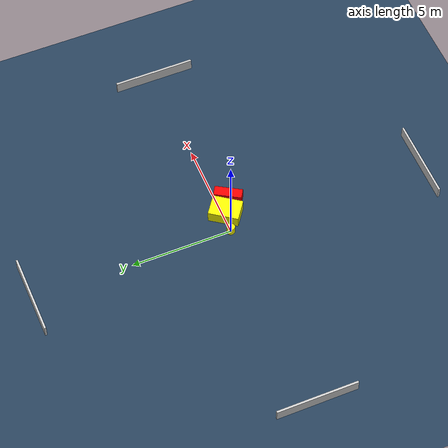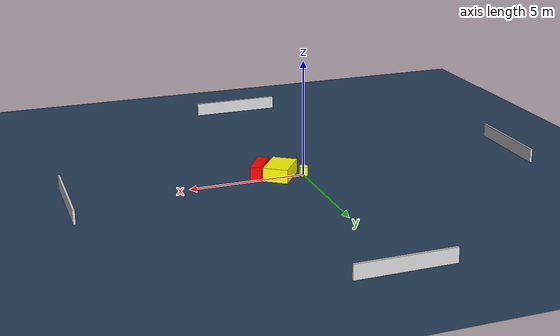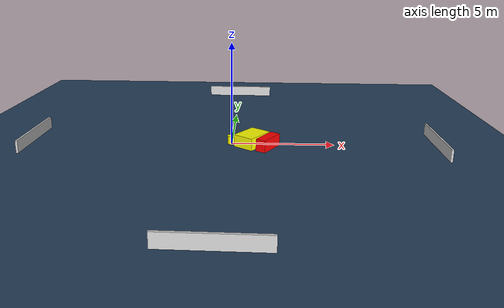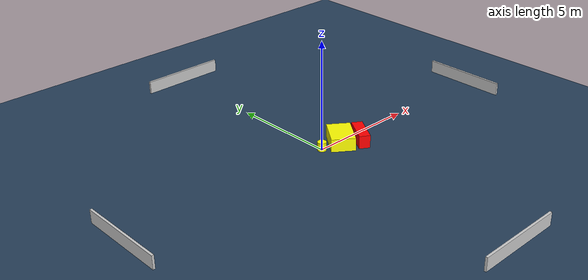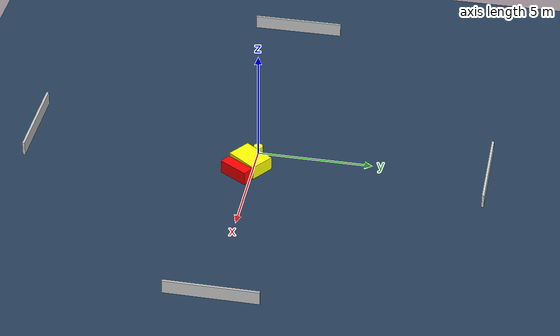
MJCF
<?xml version="1.0" ?>
<mujoco model="generated_environment">
  <option timestep="0.01" integrator="RK4" cone="elliptic"/>
  <default>
    <geom density="1"/>
  </default>
  <asset>
    <texture builtin="gradient" height="3072" name="skybox" rgb1="0.3 0.5 0.7" rgb2="0 0 0" type="skybox" width="512"/>
    <texture builtin="checker" height="300" name="groundplane" rgb1="0.2 0.3 0.4" rgb2="0.1 0.2 0.3" type="2d" width="300"/>
    <material name="groundplane" reflectance="0.2" texrepeat="5 5" texture="groundplane"/>
  </asset>
  <worldbody>
    <light dir="0 0 -1" directional="true" pos="0 0 1.5"/>
    <geom condim="3" friction="0.5 0.005 0.001" material="groundplane" name="floor" pos="0 0 0" size="0 0 0.05" type="plane"/>
    <body name="walls">
      <geom name="wall_1" condim="4" pos="-10.0 0.0 0.3" rgba="0.800000011920929 0.800000011920929 0.800000011920929 1.0" size="0.05 2.0 0.3" type="box"/>
      <geom name="wall_2" condim="4" pos="10.0 0.0 0.3" rgba="0.800000011920929 0.800000011920929 0.800000011920929 1.0" size="0.05 2.0 0.3" type="box"/>
      <geom name="wall_3" condim="4" pos="0.0 -10.0 0.3" rgba="0.800000011920929 0.800000011920929 0.800000011920929 1.0" size="2.0 0.05 0.3" type="box"/>
      <geom name="wall_4" condim="4" pos="0.0 10.0 0.3" rgba="0.800000011920929 0.800000011920929 0.800000011920929 1.0" size="2.0 0.05 0.3" type="box"/>
    </body>
    <body name="robot">
      <joint name="joint_x" type="slide" pos="0 0 0" axis="1 0 0"/>
      <joint name="joint_y" type="slide" pos="0 0 0" axis="0 1 0"/>
      <geom name="robot" type="cylinder" pos="0.0 0.0 0.2" size="0.2 0.2 0.0" mass="5.0" friction="1.0 0.005 0.0001" condim="4" rgba="1.0 1.0 0.0 1.0"/>
    </body>
    <body name="obstacle_1_movable">
      <geom name="obstacle_1_movable" condim="4" pos="1.0056092421321081 -0.14976527011001847 0.3" euler="0 0 54.04437855456151" friction="0.0 0.005 0.001" rgba="1.0 1.0 0.0 1.0" size="0.7430884118381318 0.5379547719220936 0.3" type="box" mass="0.1"/>
      <joint type="free"/>
    </body>
    <body name="obstacle_2_static">
      <geom name="obstacle_2_static" condim="4" pos="1.7827769274481384 -0.6035537512424756 0.3" euler="0 0 58.532644293048754" friction="0.0 0.005 0.001" rgba="1.0 0.0 0.0 1.0" size="0.6837846311456284 0.2496282785842247 0.3" type="box"/>
    </body>
  </worldbody>
  <actuator>
    <motor name="actuator_x" joint="joint_x" gear="1" ctrlrange="-1 1"/>
    <motor name="actuator_y" joint="joint_y" gear="1" ctrlrange="-1 1"/>
  </actuator>
</mujoco>
